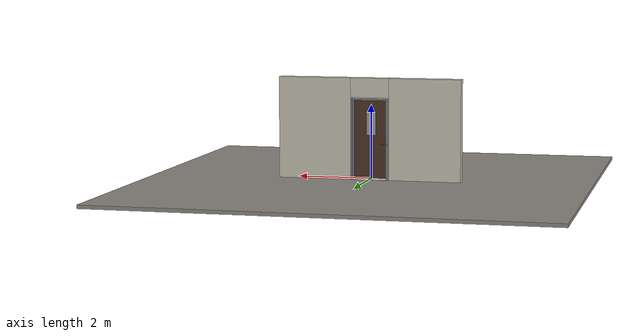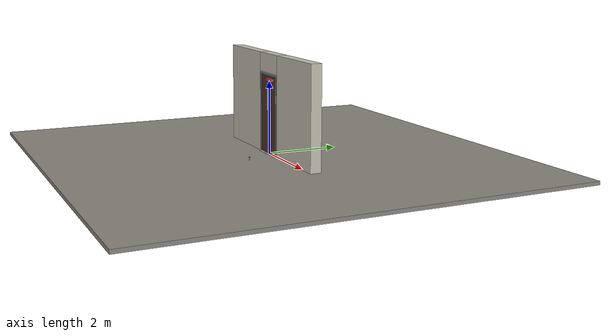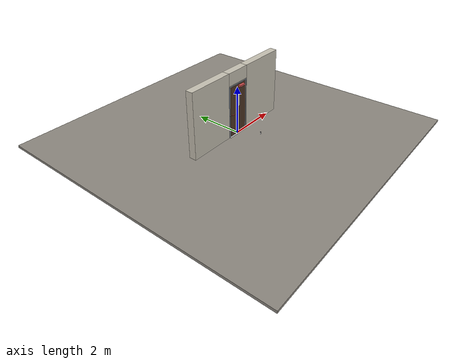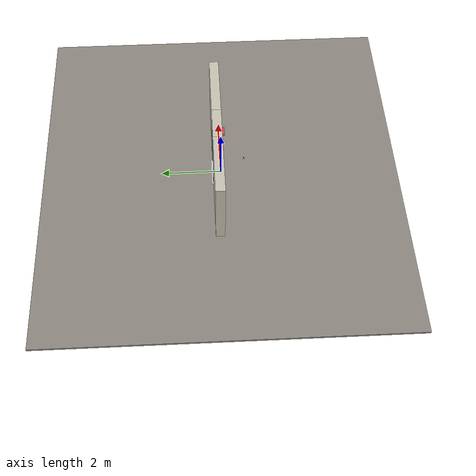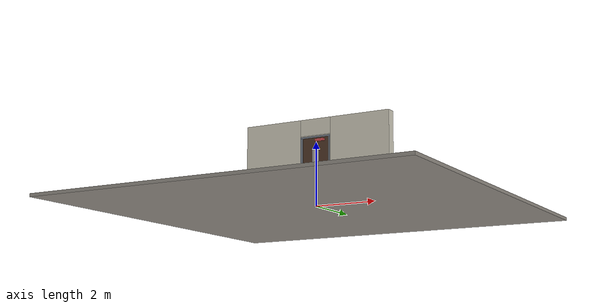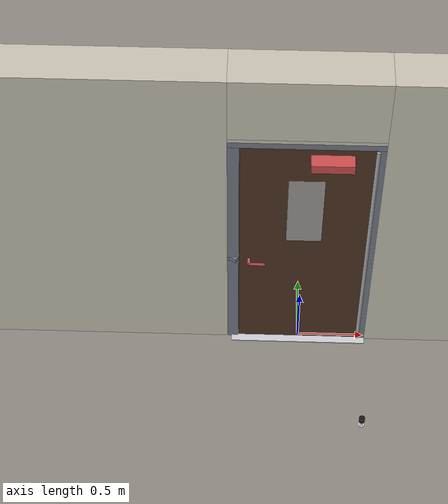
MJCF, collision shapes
<?xml version="1.0" ?>
<mujoco model="db0181_swing_single_simple">
  <compiler angle="radian" meshdir="../../hardware" texturedir="../../textures" autolimits="true" inertiafromgeom="false"/>
  <option timestep="0.002" integrator="implicitfast" cone="elliptic" impratio="10" noslip_iterations="3">
    <flag multiccd="enable"/>
  </option>
  <size memory="16M"/>
  <default>
    <geom condim="4" solref="0.005 1" solimp="0.95 0.99 0.001"/>
    <joint solreflimit="0.005 1" solimplimit="0.95 0.99 0.001"/>
    <tendon solreflimit="0.005 1"/>
    <equality solref="0.002 1"/>
  </default>
  <visual>
    <headlight ambient="0.4 0.4 0.4" diffuse="0.7 0.7 0.7" specular="0.2 0.2 0.2"/>
    <quality shadowsize="4096"/>
    <map znear="0.01" zfar="60"/>
  </visual>
  <asset>
    <mesh name="closer_body_fdc4667657" file="closer_body_fdc4667657.obj"/>
    <mesh name="lever_6268dcb28c" file="lever_6268dcb28c.obj"/>
    <material name="mat_floor" rgba="0.55 0.53 0.5 1" specular="0.2" shininess="0.15" reflectance="0"/>
    <material name="mat_wall" rgba="0.78 0.76 0.7 1" specular="0.2" shininess="0.1" reflectance="0"/>
    <material name="mat_leaf" rgba="0.3 0.2 0.14 1" specular="0.23" shininess="0.64" reflectance="0.02"/>
    <material name="mat_glass" rgba="0.9 0.93 0.95 0.6" specular="0.2" shininess="0.5" reflectance="0.1"/>
    <material name="mat_hinge" rgba="0.65 0.66 0.68 1" specular="0.74" shininess="0.5" reflectance="0.36"/>
    <material name="mat_op_stainless" rgba="0.75 0.76 0.77 1" specular="0.8" shininess="0.65" reflectance="0.4"/>
    <material name="mat_trim" rgba="0.85 0.66 0.3 1" specular="0.8" shininess="0.75" reflectance="0.4"/>
    <material name="mat_keyway" rgba="0.05 0.05 0.05 1" specular="0.2" shininess="0.5" reflectance="0"/>
    <material name="mat_bolt" rgba="0.85 0.66 0.3 1" specular="0.8" shininess="0.75" reflectance="0.4"/>
    <material name="mat_frame" rgba="0.45 0.48 0.52 1" specular="0.32" shininess="0.6" reflectance="0.08"/>
    <material name="mat_threshold" rgba="0.8 0.81 0.83 1" specular="0.8" shininess="0.6" reflectance="0.4"/>
    <material name="mat_closer" rgba="0.22 0.17 0.13 1" specular="0.8" shininess="0.6" reflectance="0.4"/>
    <material name="mat_bumper_stop" rgba="0.08 0.08 0.08 1" specular="0.2" shininess="0.1" reflectance="0"/>
    <material name="mat_stop_base" rgba="0.9 0.9 0.92 1" specular="0.8" shininess="0.9" reflectance="0.4"/>
    <texture name="skybox" type="skybox" builtin="gradient" rgb1="0.6 0.7 0.85" rgb2="0.9 0.92 0.95" width="256" height="256"/>
  </asset>
  <worldbody>
    <light name="sun" pos="1.5 -2.5 4" dir="-0.3 0.5 -0.8" directional="true" diffuse="0.8 0.8 0.8" specular="0.3 0.3 0.3" castshadow="true"/>
    <light name="fill" pos="-1.5 2.5 3" dir="0.3 -0.5 -0.7" directional="true" diffuse="0.35 0.35 0.4" castshadow="false"/>
    <camera name="robot_view" pos="0 -2.516812 1.812087" xyaxes="1 0 0 0 0.26963 0.962964" fovy="52"/>
    <camera name="far_view" pos="0 2.758812 1.812087" xyaxes="-1 0 0 0 -0.26963 0.962964" fovy="52"/>
    <camera name="iso" pos="-2.004737 -2.094762 2.234138" xyaxes="0.741536 -0.670913 0 0.242917 0.268487 0.932151" fovy="46"/>
    <camera name="detail_handle" pos="-0.1105 -0.877 1.245" xyaxes="0.97561 0.219512 0 -0.070934 0.315262 0.94635" fovy="38"/>
    <geom name="floor" type="box" size="6 6 0.05" pos="0 0 -0.05" material="mat_floor" group="0" contype="1" conaffinity="1" friction="0.8 0.005 0.0001" density="2400"/>
    <geom name="wall_left" type="box" size="0.97975 0.15 1.3735" pos="-1.52025 0.121 1.3735" material="mat_wall" group="0" contype="1" conaffinity="1" friction="0.6 0.005 0.0001" density="800"/>
    <geom name="wall_right" type="box" size="0.99475 0.15 1.3735" pos="1.50525 0.121 1.3735" material="mat_wall" group="0" contype="1" conaffinity="1" friction="0.6 0.005 0.0001" density="800"/>
    <geom name="wall_header" type="box" size="0.5255 0.15 0.26" pos="-0.015 0.121 2.487" material="mat_wall" group="0" contype="1" conaffinity="1" friction="0.6 0.005 0.0001" density="800"/>
    <geom name="jamb_hinge" type="box" size="0.025 0.15 1.0735" pos="0.4855 0.121 1.0735" material="mat_frame" group="0" contype="1" conaffinity="1" friction="0.6 0.005 0.0001" density="300"/>
    <geom name="strike_965_wall_n" type="box" size="0.04 0.13075 0.0183" pos="-0.5005 0.14025 0.965" material="mat_frame" group="0" contype="1" conaffinity="1" friction="0.6 0.005 0.0001" density="300"/>
    <geom name="strike_965_wall_p" type="box" size="0.04 0.008 0.0183" pos="-0.5005 -0.0175 0.965" material="mat_frame" group="0" contype="1" conaffinity="1" friction="0.6 0.005 0.0001" density="300"/>
    <geom name="strike_965_ramp" type="box" size="0.04 0.018028 0.0183" pos="-0.503782 -0.018312 0.965" quat="0.957092 0 0 -0.289784" material="mat_frame" group="0" contype="1" conaffinity="1" friction="0.12 0.005 0.0001" density="300"/>
    <geom name="strike_965_back" type="box" size="0.0285 0.0095 0.0183" pos="-0.512 0 0.965" material="mat_frame" group="0" contype="1" conaffinity="1" friction="0.6 0.005 0.0001" density="300"/>
    <geom name="jamb_strike_0" type="box" size="0.04 0.15 0.47335" pos="-0.5005 0.121 0.47335" material="mat_frame" group="0" contype="1" conaffinity="1" friction="0.6 0.005 0.0001" density="300"/>
    <geom name="jamb_strike_1" type="box" size="0.04 0.15 0.58185" pos="-0.5005 0.121 1.56515" material="mat_frame" group="0" contype="1" conaffinity="1" friction="0.6 0.005 0.0001" density="300"/>
    <geom name="jamb_head" type="box" size="0.5255 0.15 0.025" pos="-0.015 0.121 2.172" material="mat_frame" group="0" contype="1" conaffinity="1" friction="0.6 0.005 0.0001" density="300"/>
    <geom name="head_stud" type="box" size="0.5255 0.15 0.015" pos="-0.015 0.121 2.212" material="mat_wall" group="0" contype="1" conaffinity="1" friction="0.6 0.005 0.0001" density="500"/>
    <geom name="stop_hinge" type="box" size="0.0055 0.016 1.0735" pos="0.455 0.0385 1.0735" material="mat_frame" group="0" contype="1" conaffinity="1" friction="0.6 0.005 0.0001" density="300"/>
    <geom name="stop_strike" type="box" size="0.0055 0.016 1.0735" pos="-0.455 0.0385 1.0735" material="mat_frame" group="0" contype="1" conaffinity="1" friction="0.6 0.005 0.0001" density="300"/>
    <geom name="stop_head" type="box" size="0.4605 0.016 0.0055" pos="0 0.0385 2.1415" material="mat_frame" group="0" contype="1" conaffinity="1" friction="0.6 0.005 0.0001" density="300"/>
    <geom name="threshold" type="box" size="0.5105 0.2 0.004" pos="0 0.121 0.004" material="mat_threshold" group="0" contype="1" conaffinity="1" friction="0.6 0.005 0.0001" density="2700"/>
    <geom name="door_stop_base" type="cylinder" size="0.022 0.003" pos="0.4735 -0.8059 0.003" material="mat_stop_base" group="0" contype="1" conaffinity="1" friction="0.6 0.005 0.0001" density="7850"/>
    <geom name="door_stop_post" type="cylinder" size="0.012 0.0245" pos="0.4735 -0.8059 0.0305" material="mat_stop_base" group="0" contype="1" conaffinity="1" friction="0.6 0.005 0.0001" density="7850"/>
    <geom name="door_stop_bumper" type="cylinder" size="0.022 0.02" pos="0.4735 -0.8059 0.075" material="mat_bumper_stop" group="0" contype="1" conaffinity="1" friction="0.6 0.005 0.0001" density="1100"/>
    <site name="approach_point" pos="0 -1.5 0" quat="1 0 0 0" size="0.05" rgba="0.2 0.9 0.2 0.5" group="4"/>
    <site name="goal_point" pos="0 1.5 0" quat="1 0 0 0" size="0.05" rgba="0.2 0.9 0.2 0.5" group="4"/>
    <site name="door_plane_center" pos="0 0 1.0735" quat="1 0 0 0" size="0.02" rgba="0.2 0.9 0.2 0.5" group="4"/>
    <body name="leaf" pos="0.4605 0 0">
      <inertial pos="-0.407997 -0.015543 1.269517" mass="64.867255" quat="0.513133 -0.513244 -0.474493 -0.498127" diaginertia="4.253492639 29.713596859 33.861938357"/>
      <joint name="leaf_hinge" type="hinge" axis="0 0 1" pos="-0.003 -0.029 0" limited="true" range="0 1.570796" damping="12.268966" frictionloss="2.82052" stiffness="15.342537" springref="-1.864099" armature="0.02"/>
      <geom name="leaf_slab" type="box" size="0.457 0.022 1.067" pos="-0.46 0 1.076" material="mat_leaf" group="0" contype="1" conaffinity="1" friction="0.4 0.005 0.0001" density="1"/>
      <geom name="leaf_glass_0" type="box" size="0.125 0.0228 0.3201" pos="-0.46 0 1.5028" material="mat_glass" group="1" contype="0" conaffinity="0" density="1"/>
      <geom name="hinge_continuous" type="cylinder" size="0.0136 1.057" pos="-0.003 -0.029 1.076" material="mat_hinge" group="1" contype="0" conaffinity="0" density="2700"/>
      <geom name="leaf_latch_bolt_faceplate" type="box" size="0.0006 0.014 0.0283" pos="-0.9164 0 0.965" material="mat_bolt" group="1" contype="0" conaffinity="0" density="8500"/>
      <geom name="closer_body" type="mesh" mesh="closer_body_fdc4667657" pos="-0.3 -0.022 2.054" quat="0 0 -0.707107 0.707107" material="mat_closer" group="1" contype="0" conaffinity="0" density="2000"/>
      <geom name="closer_body_col" type="box" size="0.145 0.05 0.035" pos="-0.3 -0.072 2.054" material="mat_closer" group="3" contype="1" conaffinity="1" rgba="0.8 0.3 0.3 0.25" friction="0.6 0.005 0.0001" density="2000"/>
      <site name="leaf_edge_mid" pos="-0.917 0 1.067" quat="1 0 0 0" size="0.02" rgba="0.2 0.9 0.2 0.5" group="4"/>
      <body name="leaf_handle" pos="-0.847 0 0.965">
        <inertial pos="0.03705 0 0" mass="0.984967" quat="0.707107 0 0 -0.707107" diaginertia="0.002278035 0.00380889 0.005520856"/>
        <joint name="leaf_handle_hinge" type="hinge" axis="0 1 0" limited="true" range="0 0.09" damping="0.255799" frictionloss="0.05" stiffness="1.2" springref="-0.583333" armature="0.01"/>
        <geom name="leaf_handle_lever_n" type="mesh" mesh="lever_6268dcb28c" pos="0 -0.022 0" quat="0 0 -0.707107 0.707107" material="mat_op_stainless" group="1" contype="0" conaffinity="0" density="3000"/>
        <geom name="leaf_handle_lever_col_n" type="capsule" size="0.0095 0.0505" pos="0.06 -0.077 0" quat="0.707107 0 0.707107 0" material="mat_op_stainless" group="3" contype="1" conaffinity="1" rgba="0.8 0.3 0.3 0.25" friction="0.7 0.01 0.0001" density="3000"/>
        <geom name="leaf_handle_hub_col_n" type="cylinder" size="0.012 0.022" pos="0 -0.052 0" quat="0.707107 -0.707107 0 0" material="mat_op_stainless" group="3" contype="1" conaffinity="1" rgba="0.8 0.3 0.3 0.25" friction="0.6 0.005 0.0001" density="3000"/>
        <geom name="leaf_handle_lever_p" type="mesh" mesh="lever_6268dcb28c" pos="0 0.022 0" quat="0 0 0.707107 0.707107" material="mat_op_stainless" group="1" contype="0" conaffinity="0" density="3000"/>
        <geom name="leaf_handle_lever_col_p" type="capsule" size="0.0095 0.0505" pos="0.06 0.077 0" quat="0.707107 0 0.707107 0" material="mat_op_stainless" group="3" contype="1" conaffinity="1" rgba="0.8 0.3 0.3 0.25" friction="0.7 0.01 0.0001" density="3000"/>
        <geom name="leaf_handle_hub_col_p" type="cylinder" size="0.012 0.022" pos="0 0.052 0" quat="0.707107 -0.707107 0 0" material="mat_op_stainless" group="3" contype="1" conaffinity="1" rgba="0.8 0.3 0.3 0.25" friction="0.6 0.005 0.0001" density="3000"/>
        <site name="leaf_handle_grip_n" pos="0.096 -0.077 0" quat="1 0 0 0" size="0.012" rgba="0.2 0.9 0.2 0.5" group="4"/>
        <site name="leaf_handle_grip_p" pos="0.096 0.077 0" quat="1 0 0 0" size="0.012" rgba="0.2 0.9 0.2 0.5" group="4"/>
      </body>
      <body name="leaf_latch_bolt" pos="-0.917 0 0.965">
        <inertial pos="0.0055 0 0" mass="0.074627" quat="0.92388 0.382683 0 0" diaginertia="0.000002271 0.000013255 0.000013255"/>
        <joint name="leaf_latch_bolt_slide" type="slide" axis="1 0 0" limited="true" range="0 0.019" damping="2" frictionloss="0.3" stiffness="600" springref="-0.01" armature="0.1"/>
        <geom name="leaf_latch_bolt_capsule" type="capsule" size="0.008 0.0165" pos="0.0055 0 0" quat="0.707107 0 -0.707107 0" material="mat_bolt" group="0" contype="1" conaffinity="1" friction="0.2 0.005 0.0001" density="8500"/>
      </body>
    </body>
  </worldbody>
  <tendon>
    <fixed name="leaf_latch_bolt_coupling" limited="true" range="0 10">
      <joint joint="leaf_latch_bolt_slide" coef="1"/>
      <joint joint="leaf_handle_hinge" coef="-0.020879"/>
    </fixed>
  </tendon>
  <sensor>
    <jointpos name="leaf_hinge_pos" joint="leaf_hinge"/>
    <jointvel name="leaf_hinge_vel" joint="leaf_hinge"/>
    <jointpos name="leaf_handle_hinge_pos" joint="leaf_handle_hinge"/>
    <jointvel name="leaf_handle_hinge_vel" joint="leaf_handle_hinge"/>
    <jointpos name="leaf_latch_bolt_slide_pos" joint="leaf_latch_bolt_slide"/>
    <jointvel name="leaf_latch_bolt_slide_vel" joint="leaf_latch_bolt_slide"/>
  </sensor>
</mujoco>
